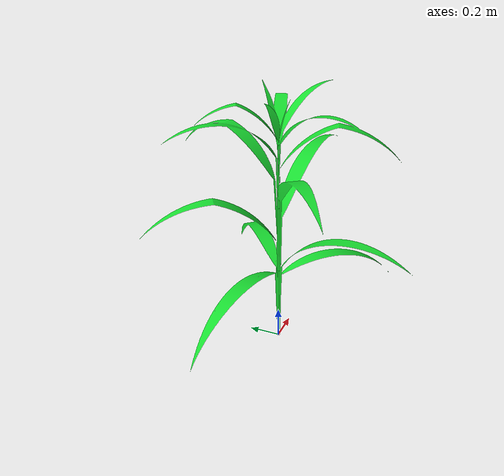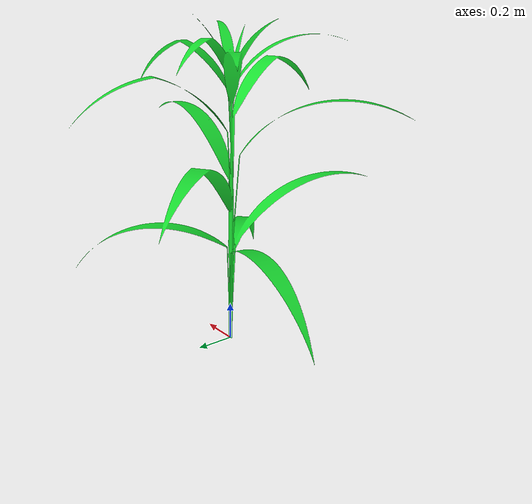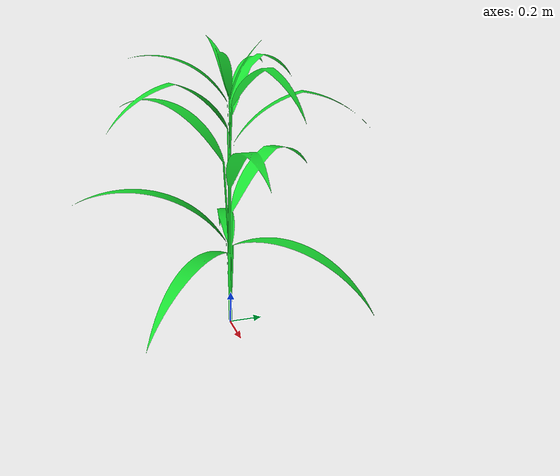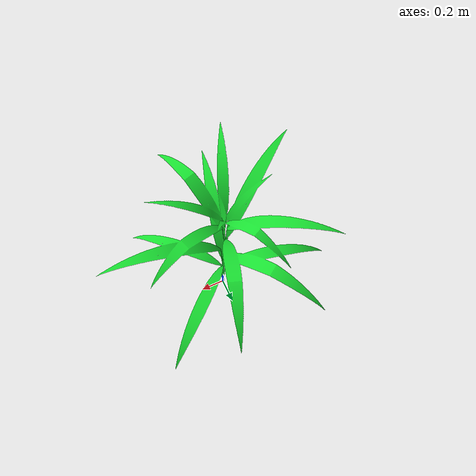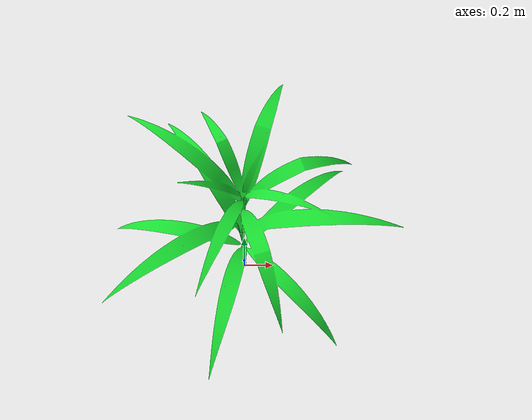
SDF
<?xml version="1.0"?>
<sdf version="1.6">
    <model name="maize_001_day_100">
        <pose frame=" ">0 0 0 0 0 0</pose>
        <link name="link">
            <inertial>
                <pose>0 0 0.01 0 0 0</pose>
                <mass>0.35257763470916564</mass>
                <inertia>
                    <ixx>0.0033416667</ixx>
                    <ixy>0</ixy>
                    <ixz>0</ixz>
                    <iyy>0.0033416667</iyy>
                    <iyz>0</iyz>
                    <izz>0.000016666667</izz>
                </inertia>
                <pose>0 0 0.1 0 0 0</pose>
            </inertial>
            <collision name="collision">
                <pose>0 0 0.6661523580551147 0 0 0</pose>
                <geometry>
                    <box>
                        <size>0.02 0.02 1.3323047161102295</size>
                    </box>
                </geometry>
                <max_contacts>10</max_contacts>
                <surface>
                    <contact>
                        <ode />
                    </contact>
                    <bounce />
                    <friction>
                        <ode>
                            <mu>10</mu>
                            <mu2>10</mu2>
                        </ode>
                    </friction>
                </surface>
            </collision>
            <visual name="visual">
                <pose>0 0 0 1.57079632679 0 0</pose>
                <geometry>
                    <mesh>
                        <uri>model://maize_001_day_100/meshes/maize_001_day_100.dae</uri>
                        <scale>1 1 1</scale>
                    </mesh>
                </geometry>
                <material>
                    <ambient>0.1 0.9 0.1 1</ambient>
                    <diffuse>0.1 0.9 0.2 1</diffuse>
                    <specular>0 0.5 0 0</specular>
                    <emissive>0 0 0 1</emissive>
                </material>
            </visual>
            <self_collide>0</self_collide>
            <enable_wind>0</enable_wind>
            <kinematic>0</kinematic>
        </link>
    </model>
</sdf>
